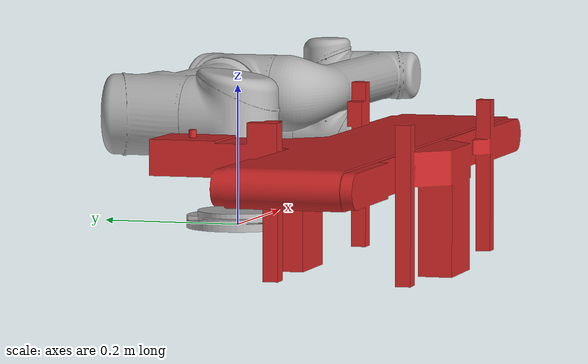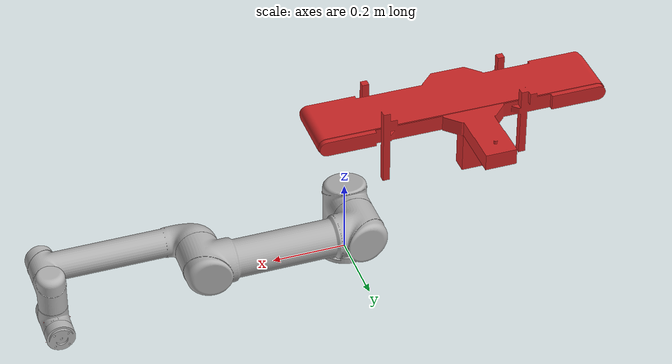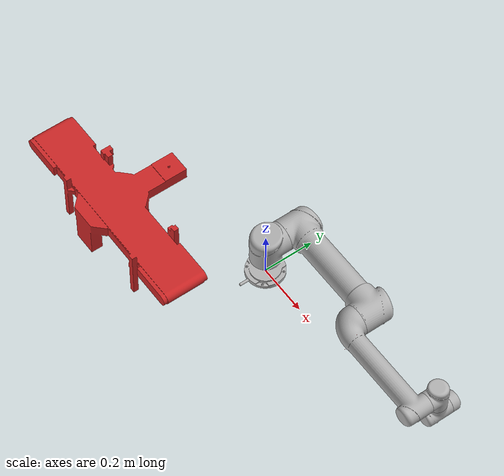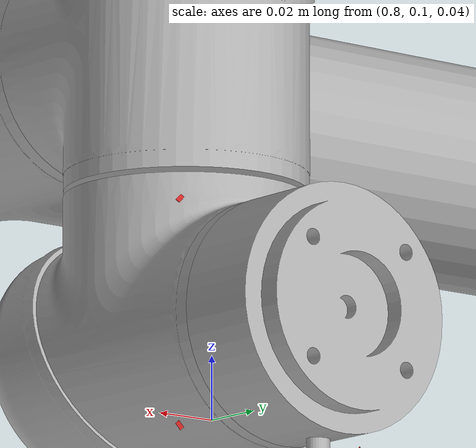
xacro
<?xml version="1.0"?>
<robot xmlns:xacro="http://wiki.ros.org/xacro" name="ur5">

    <gazebo>
        <plugin name="gazebo_ros_control" filename="libgazebo_ros_control.so">
        </plugin>
      </gazebo>
      <link name="base_link">
        <visual>
          <geometry>
            <mesh filename="package://ur_description/meshes/ur5/visual/base.dae"/>
          </geometry>
          <material name="LightGrey">
            <color rgba="0.7 0.7 0.7 1.0"/>
          </material>
        </visual>
        <collision>
          <geometry>
            <mesh filename="package://ur_description/meshes/ur5/collision/base.stl"/>
          </geometry>
        </collision>
        <inertial>
          <mass value="4.0"/>
          <origin rpy="0 0 0" xyz="0.0 0.0 0.085"/>
          <inertia ixx="0.00443333156" ixy="0.0" ixz="0.0" iyy="0.00443333156" iyz="0.0" izz="0.0072"/>
        </inertial>
      </link>
      <joint name="shoulder_pan_joint" type="revolute">
        <parent link="base_link"/>
        <child link="shoulder_link"/>
        <origin rpy="0.0 0.0 0.0" xyz="0.0 0.0 0.154159"/>
        <axis xyz="0 0 1"/>
        <limit effort="300.0" lower="-3.14159265" upper="3.14159265" velocity="3.15"/>
        <dynamics damping="0.0" friction="0.0"/>
      </joint>
      <link name="shoulder_link">
        <visual>
          <geometry>
            <mesh filename="package://ur_description/meshes/ur5/visual/shoulder.dae"/>
          </geometry>
          <material name="LightGrey">
            <color rgba="0.7 0.7 0.7 1.0"/>
          </material>
        </visual>
        <collision>
          <geometry>
            <mesh filename="package://ur_description/meshes/ur5/collision/shoulder.stl"/>
          </geometry>
        </collision>
        <inertial>
          <mass value="3.7"/>
          <origin rpy="0 0 0" xyz="0.0 0.0 0.0"/>
          <inertia ixx="0.010267495893" ixy="0.0" ixz="0.0" iyy="0.010267495893" iyz="0.0" izz="0.00666"/>
        </inertial>
      </link>
      <joint name="shoulder_lift_joint" type="revolute">
        <parent link="shoulder_link"/>
        <child link="upper_arm_link"/>
        <origin rpy="0.0 1.570796325 0.0" xyz="0.0 0.13585 0.0"/>
        <axis xyz="0 1 0"/>
        <limit effort="300.0" lower="-3.14159265" upper="3.14159265" velocity="3.15"/>
        <dynamics damping="0.0" friction="0.0"/>
      </joint>
      <link name="upper_arm_link">
        <visual>
          <geometry>
            <mesh filename="package://ur_description/meshes/ur5/visual/upperarm.dae"/>
          </geometry>
          <material name="LightGrey">
            <color rgba="0.7 0.7 0.7 1.0"/>
          </material>
        </visual>
        <collision>
          <geometry>
            <mesh filename="package://ur_description/meshes/ur5/collision/upperarm.stl"/>
          </geometry>
        </collision>
        <inertial>
          <mass value="8.393"/>
          <origin rpy="0 0 0" xyz="0.0 0.0 0.28"/>
          <inertia ixx="0.22689067591" ixy="0.0" ixz="0.0" iyy="0.22689067591" iyz="0.0" izz="0.0151074"/>
        </inertial>
      </link>
      <joint name="elbow_joint" type="revolute">
        <parent link="upper_arm_link"/>
        <child link="forearm_link"/>
        <origin rpy="0.0 0.0 0.0" xyz="0.0 -0.1197 0.425"/>
        <axis xyz="0 1 0"/>
        <limit effort="300.0" lower="-3.14159265" upper="3.14159265" velocity="3.15"/>
        <dynamics damping="0.0" friction="0.0"/>
      </joint>
      <link name="forearm_link">
        <visual>
          <geometry>
            <mesh filename="package://ur_description/meshes/ur5/visual/forearm.dae"/>
          </geometry>
          <material name="LightGrey">
            <color rgba="0.7 0.7 0.7 1.0"/>
          </material>
        </visual>
        <collision>
          <geometry>
            <mesh filename="package://ur_description/meshes/ur5/collision/forearm.stl"/>
          </geometry>
        </collision>
        <inertial>
          <mass value="2.275"/>
          <origin rpy="0 0 0" xyz="0.0 0.0 0.25"/>
          <inertia ixx="0.049443313556" ixy="0.0" ixz="0.0" iyy="0.049443313556" iyz="0.0" izz="0.004095"/>
        </inertial>
      </link>
      <joint name="wrist_1_joint" type="revolute">
        <parent link="forearm_link"/>
        <child link="wrist_1_link"/>
        <origin rpy="0.0 1.570796325 0.0" xyz="0.0 0.0 0.39225"/>
        <axis xyz="0 1 0"/>
        <limit effort="200.0" lower="-3.14159265" upper="3.14159265" velocity="3.2"/>
        <dynamics damping="0.0" friction="0.0"/>
      </joint>
      <link name="wrist_1_link">
        <visual>
          <geometry>
            <mesh filename="package://ur_description/meshes/ur5/visual/wrist1.dae"/>
          </geometry>
          <material name="LightGrey">
            <color rgba="0.7 0.7 0.7 1.0"/>
          </material>
        </visual>
        <collision>
          <geometry>
            <mesh filename="package://ur_description/meshes/ur5/collision/wrist1.stl"/>
          </geometry>
        </collision>
        <inertial>
          <mass value="1.219"/>
          <origin rpy="0 0 0" xyz="0.0 0.0 0.0"/>
          <inertia ixx="0.111172755531" ixy="0.0" ixz="0.0" iyy="0.111172755531" iyz="0.0" izz="0.21942"/>
        </inertial>
      </link>
      <joint name="wrist_2_joint" type="revolute">
        <parent link="wrist_1_link"/>
        <child link="wrist_2_link"/>
        <origin rpy="0.0 0.0 0.0" xyz="0.0 0.093 0.0"/>
        <axis xyz="0 0 1"/>
        <limit effort="200.0" lower="-3.14159265" upper="3.14159265" velocity="3.2"/>
        <dynamics damping="0.0" friction="0.0"/>
      </joint>
      <link name="wrist_2_link">
        <visual>
          <geometry>
            <mesh filename="package://ur_description/meshes/ur5/visual/wrist2.dae"/>
          </geometry>
          <material name="LightGrey">
            <color rgba="0.7 0.7 0.7 1.0"/>
          </material>
        </visual>
        <collision>
          <geometry>
            <mesh filename="package://ur_description/meshes/ur5/collision/wrist2.stl"/>
          </geometry>
        </collision>
        <inertial>
          <mass value="1.219"/>
          <origin rpy="0 0 0" xyz="0.0 0.0 0.0"/>
          <inertia ixx="0.111172755531" ixy="0.0" ixz="0.0" iyy="0.111172755531" iyz="0.0" izz="0.21942"/>
        </inertial>
      </link>
      <joint name="wrist_3_joint" type="revolute">
        <parent link="wrist_2_link"/>
        <child link="wrist_3_link"/>
        <origin rpy="0.0 0.0 0.0" xyz="0.0 0.0 0.09465"/>
        <axis xyz="0 1 0"/>
        <limit effort="200.0" lower="-3.14159265" upper="3.14159265" velocity="3.2"/>
        <dynamics damping="0.0" friction="0.0"/>
      </joint>
      <link name="wrist_3_link">
        <visual>
          <geometry>
            <mesh filename="package://ur_description/meshes/ur5/visual/wrist3.dae"/>
          </geometry>
          <material name="LightGrey">
            <color rgba="0.7 0.7 0.7 1.0"/>
          </material>
        </visual>
        <collision>
          <geometry>
            <mesh filename="package://ur_description/meshes/ur5/collision/wrist3.stl"/>
          </geometry>
        </collision>
        <inertial>
          <mass value="0.1879"/>
          <origin rpy="0 0 0" xyz="0.0 0.0 0.0"/>
          <inertia ixx="0.0171364731454" ixy="0.0" ixz="0.0" iyy="0.0171364731454" iyz="0.0" izz="0.033822"/>
        </inertial>
      </link>
      <joint name="ee_fixed_joint" type="fixed">
        <parent link="wrist_3_link"/>
        <child link="ee_link"/>
        <origin rpy="0.0 0.0 1.570796325" xyz="0.0 0.0823 0.0"/>
      </joint>
      <link name="ee_link">
        <collision>
          <geometry>
            <box size="0.01 0.01 0.01"/>
          </geometry>
          <origin rpy="0 0 0" xyz="-0.01 0 0"/>
        </collision>
      </link>
      <transmission name="shoulder_pan_trans">
        <type>transmission_interface/SimpleTransmission</type>
        <joint name="shoulder_pan_joint">
          <hardwareInterface>EffortJointInterface</hardwareInterface>
        </joint>
        <actuator name="shoulder_pan_motor">
          <mechanicalReduction>1</mechanicalReduction>
        </actuator>
      </transmission>
      <transmission name="shoulder_lift_trans">
        <type>transmission_interface/SimpleTransmission</type>
        <joint name="shoulder_lift_joint">
          <hardwareInterface>EffortJointInterface</hardwareInterface>
        </joint>
        <actuator name="shoulder_lift_motor">
          <mechanicalReduction>1</mechanicalReduction>
        </actuator>
      </transmission>
      <transmission name="elbow_trans">
        <type>transmission_interface/SimpleTransmission</type>
        <joint name="elbow_joint">
          <hardwareInterface>EffortJointInterface</hardwareInterface>
        </joint>
        <actuator name="elbow_motor">
          <mechanicalReduction>1</mechanicalReduction>
        </actuator>
      </transmission>
      <transmission name="wrist_1_trans">
        <type>transmission_interface/SimpleTransmission</type>
        <joint name="wrist_1_joint">
          <hardwareInterface>EffortJointInterface</hardwareInterface>
        </joint>
        <actuator name="wrist_1_motor">
          <mechanicalReduction>1</mechanicalReduction>
        </actuator>
      </transmission>
      <transmission name="wrist_2_trans">
        <type>transmission_interface/SimpleTransmission</type>
        <joint name="wrist_2_joint">
          <hardwareInterface>EffortJointInterface</hardwareInterface>
        </joint>
        <actuator name="wrist_2_motor">
          <mechanicalReduction>1</mechanicalReduction>
        </actuator>
      </transmission>
      <transmission name="wrist_3_trans">
        <type>transmission_interface/SimpleTransmission</type>
        <joint name="wrist_3_joint">
          <hardwareInterface>EffortJointInterface</hardwareInterface>
        </joint>
        <actuator name="wrist_3_motor">
          <mechanicalReduction>1</mechanicalReduction>
        </actuator>
      </transmission>

<joint name="laser_joint_D1" type="fixed">
    <parent link="wrist_3_link"/>
    <child link="laser_frame_D1"/>
    <origin xyz="0.034 0.04 -0.034" rpy="0.7458527 0.2740142 1.2858722"/>
</joint>

<link name="laser_frame_D1">
    <visual>
        <geometry>
            <box size="0.0002 0.0014 0.0026"/>
        </geometry>
        <material name="red"/>
    </visual>
</link>

 <gazebo reference="laser_frame_D1">
    <material>Gazebo/Red</material>

    <sensor name="laser_D1" type="ray">
        <pose> 0 0 0 0 0 0 </pose>
        <visualize>true</visualize>
        <update_rate>100</update_rate>
        <ray>
            <scan>
                <horizontal>
                    <samples>27</samples>
                    <min_angle>-0.1745329252 </min_angle>
                    <max_angle>0.1745329252 </max_angle>
                </horizontal>
                <vertical>
                    <samples>27</samples>
                    <min_angle>-0.1745329252 </min_angle>
                    <max_angle>0.1745329252 </max_angle>
                </vertical>
            </scan>
            <range>
                <min>0.05</min>
                <max>2</max>
            </range>
        </ray>
        <plugin name="laser_controller" filename="libgazebo_ros_laser.so">
            <ros>
                <argument>~/out:=scan</argument>
            </ros>
            <output_type>sensor_msgs/LaserScan</output_type>
            <topicName>laser_frame_D1</topicName>
        </plugin>
    </sensor>
</gazebo>

<joint name="laser_joint_D2" type="fixed">
    <parent link="wrist_3_link"/>
    <child link="laser_frame_D2"/>
    <origin xyz="-0.034 0.04 0.034" rpy="0.7458527 -0.2740142 1.8557205"/>
</joint>

<link name="laser_frame_D2">
    <visual>
        <geometry>
            <box size="0.0002 0.0014 0.0026"/>
        </geometry>
        <material name="red"/>
    </visual>
</link>

<gazebo reference="laser_frame_D2">
    <material>Gazebo/Red</material>

    <sensor name="laser_D2" type="ray">
        <pose> 0 0 0 0 0 0 </pose>
        <visualize>true</visualize>
        <update_rate>100</update_rate>
        <ray>
            <scan>
                <horizontal>
                    <samples>27</samples>
                    <min_angle>-0.1745329252 </min_angle>
                    <max_angle>0.1745329252 </max_angle>
                </horizontal>
                <vertical>
                    <samples>27</samples>
                    <min_angle>-0.1745329252 </min_angle>
                    <max_angle>0.1745329252 </max_angle>
                </vertical>
            </scan>
            <range>
                <min>0.05</min>
                <max>2</max>
            </range>
        </ray>
        <plugin name="laser_controller" filename="libgazebo_ros_laser.so">
            <ros>
                <argument>~/out:=scan</argument>
            </ros>
            <output_type>sensor_msgs/LaserScan</output_type>
            <topicName>laser_frame_D2</topicName>
        </plugin>
    </sensor>
</gazebo>

  <joint name="laser_joint_A2" type="fixed">
    <parent link="forearm_link"/>
    <child link="laser_frame_A2"/>
    <origin xyz="0.0 0.048 0.07" rpy="0 -1.1780972451 1.5707963268"/>
</joint>

<link name="laser_frame_A2">
    <visual>
        <geometry>
            <box size="0.0002 0.0026  0.0014"/>
        </geometry>
        <material name="red"/>
    </visual>
</link>

<gazebo reference="laser_frame_A2">
    <material>Gazebo/Red</material>

    <sensor name="laser_A2" type="ray">
        <pose> 0 0 0 0 0 0 </pose>
        <visualize>false</visualize>
        <update_rate>100</update_rate>
        <ray>
            <scan>
                <horizontal>
                    <!--27 degrees-->
                    <samples>27</samples>
                    <min_angle>-0.1745329252  </min_angle>
                    <max_angle>0.1745329252  </max_angle>
                </horizontal>
                <vertical>
                    <!--27 degrees-->
                    <samples>27</samples>
                    <min_angle>-0.1745329252  </min_angle>
                    <max_angle>0.1745329252  </max_angle>
                </vertical>
            </scan>
            <range>
                <min>0.05</min>
                <max>2</max>
            </range>
        </ray>
        <plugin name="laser_controller" filename="libgazebo_ros_laser.so">
            <ros>
                <argument>~/out:=scan</argument>
            </ros>
            <output_type>sensor_msgs/LaserScan</output_type>
            <topicName>laser_frame_A2</topicName>
        </plugin>
    </sensor>
</gazebo>
  <joint name="laser_joint_B1" type="fixed">
    <parent link="wrist_3_link"/>
    <child link="laser_frame_B1"/>
    <origin xyz="0.034 0.04 0.034" rpy="-0.7458527 -0.2740142 1.2858722"/>
</joint>

<link name="laser_frame_B1">
    <visual>
        <geometry>
            <box size="0.0002 0.0014 0.0026"/>
        </geometry>
        <material name="red"/>
    </visual>
</link>

<gazebo reference="laser_frame_B1">
    <material>Gazebo/Red</material>

    <sensor name="laser_B1" type="ray">
        <pose> 0 0 0 0 0 0 </pose>
        <visualize>true</visualize>
        <update_rate>100</update_rate>
        <ray>
            <scan>
                <horizontal>
                    <!--27 degrees-->
                    <samples>27</samples>
                    <min_angle>-0.1745329252 </min_angle>
                    <max_angle>0.1745329252 </max_angle>
                </horizontal>
                <vertical>
                    <!--27 degrees-->
                    <samples>27</samples>
                    <min_angle>-0.1745329252 </min_angle>
                    <max_angle>0.1745329252 </max_angle>
                </vertical>
            </scan>
            <range>
                <min>0.05</min>
                <max>2</max>
            </range>
        </ray>
        <plugin name="laser_controller" filename="libgazebo_ros_laser.so">
            <ros>
                <argument>~/out:=scan</argument>
            </ros>
            <output_type>sensor_msgs/LaserScan</output_type>
            <topicName>laser_frame_B1</topicName>
        </plugin>
    </sensor>
</gazebo>
<joint name="laser_joint_B2" type="fixed">
    <parent link="wrist_3_link"/>
    <child link="laser_frame_B2"/>
    <origin xyz="-0.034 0.04 -0.034" rpy="-0.7458527 0.2740142 1.8557205"/>
</joint>

<link name="laser_frame_B2">
    <visual>
        <geometry>
            <box size="0.0002 0.0014 0.0026"/>
        </geometry>
        <material name="red"/>
    </visual>
</link>

<gazebo reference="laser_frame_B2">
    <material>Gazebo/Red</material>

    <sensor name="laser_B2" type="ray">
        <pose> 0 0 0 0 0 0 </pose>
        <visualize>true</visualize>
        <update_rate>100</update_rate>
        <ray>
            <scan>
                <horizontal>

                    <samples>27</samples>
                    <min_angle>-0.1745329252 </min_angle>
                    <max_angle>0.1745329252 </max_angle>
                </horizontal>
                <vertical>
                    <samples>27</samples>
                    <min_angle>-0.1745329252 </min_angle>
                    <max_angle>0.1745329252 </max_angle>
                </vertical>
            </scan>
            <range>
                <min>0.05</min>
                <max>2</max>
            </range>
        </ray>
        <plugin name="laser_controller" filename="libgazebo_ros_laser.so">
            <ros>
                <argument>~/out:=scan</argument>
            </ros>
            <output_type>sensor_msgs/LaserScan</output_type>
            <topicName>laser_frame_B2</topicName>
        </plugin>
    </sensor>
</gazebo>

<joint name="laser_joint_C2" type="fixed">
    <parent link="forearm_link"/>
    <child link="laser_frame_C2"/>
    <origin xyz="0.048 0.0 0.07" rpy="0 -1.9634954085 3.1415926536"/>
</joint>

<link name="laser_frame_C2">
    <visual>
        <geometry>
            <box size="0.0002 0.0026  0.0014"/>
        </geometry>
        <material name="red"/>
    </visual>
</link>

<gazebo reference="laser_frame_C2">
    <material>Gazebo/Red</material>

    <sensor name="laser_C2" type="ray">
        <pose> 0 0 0 0 0 0 </pose>
        <visualize>false</visualize>
        <update_rate>100</update_rate>
        <ray>
            <scan>
                <horizontal>
                    <!--27 degrees-->
                    <samples>27</samples>
                    <min_angle>-0.1745329252 </min_angle>
                    <max_angle>0.1745329252 </max_angle>
                </horizontal>
                <vertical>
                    <!--27 degrees-->
                    <samples>27</samples>
                    <min_angle>-0.1745329252 </min_angle>
                    <max_angle>0.1745329252 </max_angle>
                </vertical>
            </scan>
            <range>
                <min>0.05</min>
                <max>2</max>
            </range>
        </ray>
        <plugin name="laser_controller" filename="libgazebo_ros_laser.so">
            <ros>
                <argument>~/out:=scan</argument>
            </ros>
            <output_type>sensor_msgs/LaserScan</output_type>
            <topicName>laser_frame_C2</topicName>
        </plugin>
    </sensor>
</gazebo>

<joint name="laser_joint_C1" type="fixed">
  <parent link="forearm_link"/>
  <child link="laser_frame_C1"/>
  <origin xyz="-0.048 0.0 0.07" rpy="0 -1.1780972451 3.1415926536"/>
</joint>

<link name="laser_frame_C1">
  <visual>
      <geometry>
          <box size="0.0002 0.0026  0.0014"/>
      </geometry>
      <material name="red"/>
  </visual>
</link>

<gazebo reference="laser_frame_C1">
  <material>Gazebo/Red</material>

  <sensor name="laser_C1" type="ray">
      <pose> 0 0 0 0 0 0 </pose>
      <visualize>false</visualize>
      <update_rate>100</update_rate>
      <ray>
          <scan>
              <horizontal>
                  <!--27 degrees-->
                  <samples>27</samples>
                  <min_angle>-0.1745329252 </min_angle>
                  <max_angle>0.1745329252 </max_angle>
              </horizontal>
              <vertical>
                  <!--27 degrees-->
                  <samples>27</samples>
                  <min_angle>-0.1745329252 </min_angle>
                  <max_angle>0.1745329252 </max_angle>
              </vertical>
          </scan>
          <range>
              <min>0.05</min>
              <max>2</max>
          </range>
      </ray>
      <plugin name="laser_controller" filename="libgazebo_ros_laser.so">
          <ros>
              <argument>~/out:=scan</argument>
          </ros>
          <output_type>sensor_msgs/LaserScan</output_type>
          <topicName>laser_frame_C1</topicName>
      </plugin>
  </sensor>
</gazebo>

<joint name="laser_joint_A1" type="fixed">
    <parent link="forearm_link"/>
    <child link="laser_frame_A1"/>
    <origin xyz="0.0 -0.048 0.07" rpy="0 -1.9634954085 1.5707963268"/>
</joint>

<link name="laser_frame_A1">
    <visual>
        <geometry>
            <box size="0.0002 0.0026  0.0014"/>
        </geometry>
        <material name="red"/>
    </visual>
</link>

<gazebo reference="laser_frame_A1">
    <material>Gazebo/Red</material>

     <sensor name="laser_A1" type="ray">
        <pose> 0 0 0 0 0 0 </pose>
        <visualize>false</visualize>
        <update_rate>100</update_rate>
        <ray>
            <scan>
                 <horizontal>

                    <samples>27</samples>
                    <min_angle>-0.1745329252 </min_angle>
                    <max_angle>0.1745329252 </max_angle>
                </horizontal>
                <vertical>

                    <samples>27</samples>
                    <min_angle>-0.1745329252 </min_angle>
                    <max_angle>0.1745329252 </max_angle>
                </vertical>
            </scan>
            <range>
                <min>0.05</min>
                <max>2</max>
            </range>
        </ray>

        <plugin name="laser_controller" filename="libgazebo_ros_laser.so">
            <ros>
                <argument>~/out:=scan</argument>
            </ros>
            <output_type>sensor_msgs/LaserScan</output_type>
            <topicName>laser_frame_A1</topicName>
        </plugin>
    </sensor>
</gazebo>

  <!-- test lidar -->

  <!-- box -->
    <link name="box">
        <inertial>
            <origin xyz="0.01 0 -0.45" />
            <mass value="1.0" />
            <inertia  ixx="1.0" ixy="0.0"  ixz="0.0"  iyy="100.0"  iyz="0.0"  izz="1.0" />
        </inertial>
        <visual>
            <origin xyz="0.01 0 -0.45" />
            <geometry>
                <mesh filename="package://ur5-joint-position-control/urdf/tekociTrak.STL" scale="1 1 1"/>
            </geometry>
            <material name="red"/>
        </visual>
        <collision>
          <surface>
            <contact>
              <ode>
                <min_depth>1</min_depth>
                <max_vel>0.0</max_vel>
              </ode>
            </contact>
          </surface>
            <origin xyz="0.01 0 -0.45" />
            <geometry>
                <mesh filename="package://ur5-joint-position-control/urdf/tekociTrak.STL" scale="1 1 1"/>
            </geometry>
        </collision>
    </link>
    <joint name="box_joint" type="fixed">
        <parent link="world"/>
        <child link="box"/>
        <!-- TODO: check base_link name of robot -->
        <origin rpy="1.5707963268 0.0 3.1415926536" xyz="0.0 0.0 0.0"/>
    </joint>

    <!-- define the ur5's position and orientation in the world coordinate system -->
    <link name="world"/>
    <joint name="world_joint" type="fixed">
        <parent link="world"/>
        <child link="base_link"/>
        <!-- TODO: check base_link name of robot -->
        <origin rpy="0.0 0.0 0.0" xyz="0.0 0.0 0.0"/>
    </joint>

</robot>
